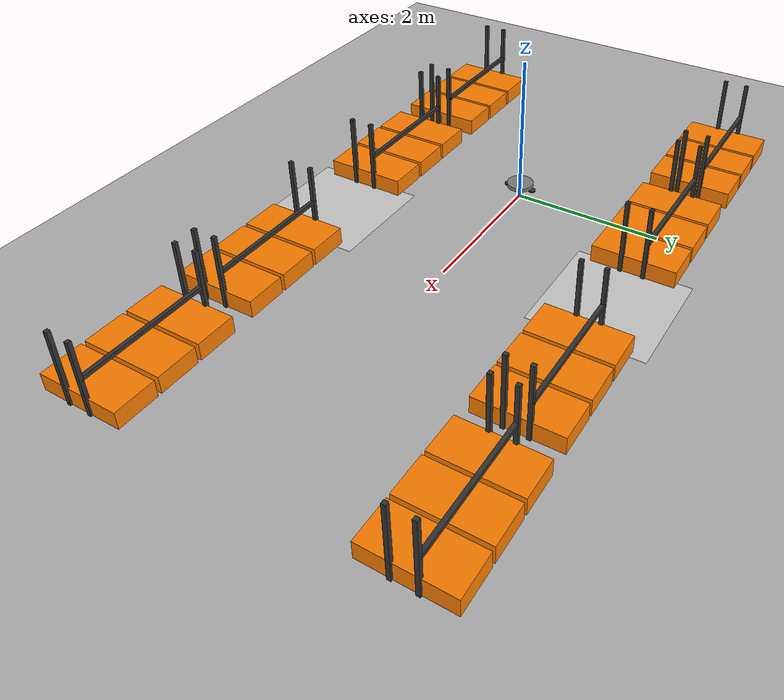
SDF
<?xml version="1.0"?>
<sdf version="1.6">
  <world name="warehouse">

    <!-- STEP 1: Ground Plane -->
    <model name="ground_plane">
      <static>true</static>
      <link name="ground_link">
        <collision name="collision">
          <geometry>
            <plane>
              <normal>0 0 1</normal>
              <size>100 100</size>
            </plane>
          </geometry>
        </collision>
        <visual name="visual">
          <geometry>
            <plane>
              <normal>0 0 1</normal>
              <size>100 100</size>
            </plane>
          </geometry>
          <material>
            <ambient>0.7 0.7 0.7 1</ambient>
            <diffuse>0.7 0.7 0.7 1</diffuse>
          </material>
        </visual>
      </link>
    </model>

    <!-- STEP 2: Sun Light -->
    <light name="sun" type="directional">
      <cast_shadows>true</cast_shadows>
      <pose>0 0 10 0 0 0</pose>
      <diffuse>1 1 1 1</diffuse>
      <specular>0.1 0.1 0.1 1</specular>
      <direction>-0.5 0.5 -1</direction>
      <attenuation>
        <range>1000</range>
        <constant>0.9</constant>
        <linear>0.01</linear>
        <quadratic>0.001</quadratic>
      </attenuation>
    </light>

    <!-- STEP 3: Cupboard rows with unique names -->
    <!-- Row 1 at y = +2.0 -->
    <include>
      <name>cupboard_1</name>
      <uri>model://cupboard/</uri>
      <pose>-2.0  2.0 0.0  0 0 0</pose>
    </include>
    <include>
      <name>cupboard_2</name>
      <uri>model://cupboard/</uri>
      <pose> 0.0  2.0 0.0  0 0 0</pose>
    </include>
    <include>
      <name>cupboard_3</name>
      <uri>model://cupboard/</uri>
      <pose> 3.0  2.0 0.0  0 0 0</pose>
    </include>
    <include>
      <name>cupboard_4</name>
      <uri>model://cupboard</uri>
      <pose> 5.0 2.0 0.0  0 0 0</pose>
    </include>

    <!-- Row 2 at y = -2.0 -->
    <include>
      <name>cupboard_5</name>
      <uri>model://cupboard/</uri>
      <pose>-2.0 -2.0 0.0  0 0 0</pose>
    </include>
    <include>
      <name>cupboard_6</name>
      <uri>model://cupboard/</uri>
      <pose> 0.0 -2.0 0.0  0 0 0</pose>
    </include>
    <include>
      <name>cupboard_7</name>
      <uri>model://cupboard/</uri>
      <pose> 3.0 -2.0 0.0  0 0 0</pose>
    </include>
    <include>
      <name>cupboard_8</name>
      <uri>model://cupboard/</uri>
      <pose> 5.0 -2.0 0.0  0 0 0</pose>
    </include>

    <!-- STEP 4: Central intersection tile -->
    <include>
      <uri>model://intersection</uri>
      <name>intersection_center_1</name>
      <pose>1.5 2.0 0.001  0 0 0</pose>
    </include>
    <include>
      <uri>model://intersection</uri>
      <name>intersection_center_2</name>
      <pose>1.5 -2.0 0.001  0 0 0</pose>
    </include>

    <!-- STEP 5: Add robot -->
    <include>
      <uri>model://robot</uri>
      <name>vacuum_robot</name>
      <pose>0 0 0.1 0 0 0</pose>
    </include>

  </world>
</sdf>

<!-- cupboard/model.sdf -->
<sdf version="1.6">
  <model name="cupboard">
    <static>true</static>

    <link name="cupboard_link">

      <!-- Inertial (minimal since static) -->
      <inertial>
        <mass>1.0</mass>
        <inertia>
          <ixx>0.1</ixx>
          <iyy>0.1</iyy>
          <izz>0.1</izz>
        </inertia>
      </inertial>

      <!-- FRAME: four vertical posts -->
      <!-- New width: 3×0.535 + 2×0.05 gap = 1.705 m total → half-width = 0.8525 -->
      <!-- Corner posts at x = ±0.8525, y = ±0.15, height = 1.0 (z=0.5) -->

      <!-- Front-left post -->
      <visual name="post_fl_vis">
        <pose>-0.8525  0.15 0.5  0 0 0</pose>
        <geometry><box><size>0.05 0.05 1.0</size></box></geometry>
        <material><ambient>0.2 0.2 0.2 1</ambient><diffuse>0.2 0.2 0.2 1</diffuse></material>
      </visual>
      <collision name="post_fl_col">
        <pose>-0.8525  0.15 0.5  0 0 0</pose>
        <geometry><box><size>0.05 0.05 1.0</size></box></geometry>
      </collision>

      <!-- Front-right post -->
      <visual name="post_fr_vis">
        <pose> 0.8525  0.15 0.5  0 0 0</pose>
        <geometry><box><size>0.05 0.05 1.0</size></box></geometry>
        <material><ambient>0.2 0.2 0.2 1</ambient><diffuse>0.2 0.2 0.2 1</diffuse></material>
      </visual>
      <collision name="post_fr_col">
        <pose> 0.8525  0.15 0.5  0 0 0</pose>
        <geometry><box><size>0.05 0.05 1.0</size></box></geometry>
      </collision>

      <!-- Back-left post -->
      <visual name="post_bl_vis">
        <pose>-0.8525 -0.15 0.5  0 0 0</pose>
        <geometry><box><size>0.05 0.05 1.0</size></box></geometry>
        <material><ambient>0.2 0.2 0.2 1</ambient><diffuse>0.2 0.2 0.2 1</diffuse></material>
      </visual>
      <collision name="post_bl_col">
        <pose>-0.8525 -0.15 0.5  0 0 0</pose>
        <geometry><box><size>0.05 0.05 1.0</size></box></geometry>
      </collision>

      <!-- Back-right post -->
      <visual name="post_br_vis">
        <pose> 0.8525 -0.15 0.5  0 0 0</pose>
        <geometry><box><size>0.05 0.05 1.0</size></box></geometry>
        <material><ambient>0.2 0.2 0.2 1</ambient><diffuse>0.2 0.2 0.2 1</diffuse></material>
      </visual>
      <collision name="post_br_col">
        <pose> 0.8525 -0.15 0.5  0 0 0</pose>
        <geometry><box><size>0.05 0.05 1.0</size></box></geometry>
      </collision>

      <!-- Front horizontal rail at mid-height -->
      <visual name="rail_front_vis">
        <pose>0 0.15 0.5 0 0 0</pose>
        <geometry><box><size>1.705 0.05 0.05</size></box></geometry>
        <material><ambient>0.2 0.2 0.2 1</ambient><diffuse>0.2 0.2 0.2 1</diffuse></material>
      </visual>
      <collision name="rail_front_col">
        <pose>0 0.15 0.5 0 0 0</pose>
        <geometry><box><size>1.705 0.05 0.05</size></box></geometry>
      </collision>

      <!-- Three orange boxes, size 0.535×1.100×0.230 (W×D×H), gap 0.05m -->
      <!-- X positions: −(0.535+0.05)=−0.585, 0, +0.585; Z=0.115 (half height) -->

      <!-- Left box -->
      <visual name="box_left_vis">
        <pose>-0.585  0.00 0.115  0 0 0</pose>
        <geometry><box><size>0.535 1.100 0.230</size></box></geometry>
        <material><ambient>1 0.5 0 1</ambient><diffuse>1 0.5 0 1</diffuse></material>
      </visual>
      <collision name="box_left_col">
        <pose>-0.585  0.00 0.115  0 0 0</pose>
        <geometry><box><size>0.535 1.100 0.230</size></box></geometry>
      </collision>

      <!-- Center box -->
      <visual name="box_center_vis">
        <pose> 0.000  0.00 0.115  0 0 0</pose>
        <geometry><box><size>0.535 1.100 0.230</size></box></geometry>
        <material><ambient>1 0.5 0 1</ambient><diffuse>1 0.5 0 1</diffuse></material>
      </visual>
      <collision name="box_center_col">
        <pose> 0.000  0.00 0.115  0 0 0</pose>
        <geometry><box><size>0.535 1.100 0.230</size></box></geometry>
      </collision>

      <!-- Right box -->
      <visual name="box_right_vis">
        <pose> 0.585  0.00 0.115  0 0 0</pose>
        <geometry><box><size>0.535 1.100 0.230</size></box></geometry>
        <material><ambient>1 0.5 0 1</ambient><diffuse>1 0.5 0 1</diffuse></material>
      </visual>
      <collision name="box_right_col">
        <pose> 0.585  0.00 0.115  0 0 0</pose>
        <geometry><box><size>0.535 1.100 0.230</size></box></geometry>
      </collision>

    </link>
  </model>
</sdf>

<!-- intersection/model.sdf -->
<sdf version="1.6">
  <model name="intersection">
    <static>true</static>
    <link name="intersection_link">
      <pose>0 0 0.001 0 0 0</pose>
      <collision name="collision">
        <geometry>
          <box>
            <size>1.5 1.5 0.002</size>
          </box>
        </geometry>
      </collision>
      <visual name="visual">
        <geometry>
          <box>
            <size>1.5 1.5 0.002</size>
          </box>
        </geometry>
        <material>
          <ambient>1 1 1 0.4</ambient>
          <diffuse>1 1 1 0.4</diffuse>
        </material>
      </visual>
    </link>
  </model>
</sdf>

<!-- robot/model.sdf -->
<sdf version="1.6">
  <model name="warehouse_bot">
    <static>false</static>

    <!--   Base Link & Body    -->
    <link name="base_link">
      <pose>0 0 0.1 0 0 0</pose>

      <!-- Body collision & visual -->
      <collision name="body_col">
        <geometry>
          <cylinder>
            <radius>0.18</radius>
            <length>0.05</length>
          </cylinder>
        </geometry>
      </collision>
      <visual name="body_vis">
        <geometry>
          <cylinder>
            <radius>0.18</radius>
            <length>0.05</length>
          </cylinder>
        </geometry>
        <material>
          <ambient>0.5 0.5 0.5 1</ambient>
          <diffuse>0.5 0.5 0.5 1</diffuse>
        </material>
      </visual>

      <!-- Inertial -->
      <inertial>
        <mass>5.0</mass>
        <inertia>
          <ixx>0.05</ixx>
          <iyy>0.05</iyy>
          <izz>0.05</izz>
        </inertia>
      </inertial>

      <!-- IMU Sensor -->
      <sensor name="imu_sensor" type="imu">
        <pose>0 0 0 0 0 0</pose>
        <imu>
          <topic>/warehouse_bot/imu/data_raw</topic>
          <gaussianNoise>0.0001</gaussianNoise>
        </imu>
        <plugin name="imu_plugin" filename="libros_gz_imu.so">
          <ros>
            <namespace>warehouse_bot</namespace>
          </ros>
          <topicName>imu/data_raw</topicName>
          <frameId>base_link</frameId>
        </plugin>
      </sensor>

      <!-- Ultrasonic / IR Rangefinders -->
      <sensor name="range_front" type="ray">
        <pose>0.25 0 0.1 0 0 0</pose>
        <ray>
          <scan>
            <horizontal>
              <samples>1</samples>
              <resolution>1</resolution>
              <min_angle>0</min_angle>
              <max_angle>0</max_angle>
            </horizontal>
          </scan>
          <range>
            <min>0.02</min>
            <max>3.0</max>
            <resolution>0.01</resolution>
          </range>
        </ray>
        <plugin name="range_plugin_f" filename="libros_gz_range.so">
          <ros>
            <namespace>warehouse_bot</namespace>
          </ros>
          <topicName>range/front</topicName>
          <frameId>base_link</frameId>
        </plugin>
      </sensor>

      <sensor name="range_left" type="ray">
        <pose>0 0.18 0.1 0 0 1.5708</pose>
        <ray>
          <scan>
            <horizontal>
              <samples>1</samples>
              <resolution>1</resolution>
              <min_angle>0</min_angle>
              <max_angle>0</max_angle>
            </horizontal>
          </scan>
          <range>
            <min>0.02</min>
            <max>3.0</max>
            <resolution>0.01</resolution>
          </range>
        </ray>
        <plugin name="range_plugin_l" filename="libros_gz_range.so">
          <ros>
            <namespace>warehouse_bot</namespace>
          </ros>
          <topicName>range/left</topicName>
          <frameId>base_link</frameId>
        </plugin>
      </sensor>

      <sensor name="range_right" type="ray">
        <pose>0 -0.18 0.1 0 0 -1.5708</pose>
        <ray>
          <scan>
            <horizontal>
              <samples>1</samples>
              <resolution>1</resolution>
              <min_angle>0</min_angle>
              <max_angle>0</max_angle>
            </horizontal>
          </scan>
          <range>
            <min>0.02</min>
            <max>3.0</max>
            <resolution>0.01</resolution>
          </range>
        </ray>
        <plugin name="range_plugin_r" filename="libros_gz_range.so">
          <ros>
            <namespace>warehouse_bot</namespace>
          </ros>
          <topicName>range/right</topicName>
          <frameId>base_link</frameId>
        </plugin>
      </sensor>

    </link>

    <!--    Wheel Assemblies    -->
    <link name="wheel_left">
      <pose>0 0.18 0.05 0 0 0</pose>
      <collision name="col">
        <geometry>
          <cylinder><radius>0.05</radius><length>0.02</length></cylinder>
        </geometry>
      </collision>
      <visual name="vis">
        <geometry>
          <cylinder><radius>0.05</radius><length>0.02</length></cylinder>
        </geometry>
        <material>
          <ambient>0.2 0.2 0.2 1</ambient>
          <diffuse>0.2 0.2 0.2 1</diffuse>
        </material>
      </visual>
      <inertial>
        <mass>0.3</mass>
        <inertia>
          <ixx>0.0005</ixx>
          <iyy>0.0005</iyy>
          <izz>0.0005</izz>
        </inertia>
      </inertial>
    </link>

    <link name="wheel_right">
      <pose>0 -0.18 0.05 0 0 0</pose>
      <collision name="col">
        <geometry>
          <cylinder><radius>0.05</radius><length>0.02</length></cylinder>
        </geometry>
      </collision>
      <visual name="vis">
        <geometry>
          <cylinder><radius>0.05</radius><length>0.02</length></cylinder>
        </geometry>
        <material>
          <ambient>0.2 0.2 0.2 1</ambient>
          <diffuse>0.2 0.2 0.2 1</diffuse>
        </material>
      </visual>
      <inertial>
        <mass>0.3</mass>
        <inertia>
          <ixx>0.0005</ixx>
          <iyy>0.0005</iyy>
          <izz>0.0005</izz>
        </inertia>
      </inertial>
    </link>

    <!--       Wheel Joints     -->
    <joint name="joint_left" type="revolute">
      <parent>base_link</parent>
      <child>wheel_left</child>
      <axis>
        <xyz>0 1 0</xyz>
        <limit>
          <lower>-1000</lower>
          <upper>1000</upper>
        </limit>
      </axis>
    </joint>

    <joint name="joint_right" type="revolute">
      <parent>base_link</parent>
      <child>wheel_right</child>
      <axis>
        <xyz>0 1 0</xyz>
        <limit>
          <lower>-1000</lower>
          <upper>1000</upper>
        </limit>
      </axis>
    </joint>

    <!--  Differential Drive    -->
    <plugin name="diff_drive" filename="libros_gz_diff_drive.so">
      <ros>
        <namespace>warehouse_bot</namespace>
      </ros>
      <leftJoint>joint_left</leftJoint>
      <rightJoint>joint_right</rightJoint>
      <wheelSeparation>0.36</wheelSeparation>
      <wheelDiameter>0.10</wheelDiameter>
      <cmdVelTopic>cmd_vel</cmdVelTopic>
      <frameId>base_link</frameId>
    </plugin>

    <!--    Monocular Camera    -->
    <link name="camera_link">
      <pose>0.20 0 0.30 0 0 0</pose>
      <sensor name="front_camera" type="camera">
        <camera>
          <horizontal_fov>1.047</horizontal_fov>
          <image>
            <width>640</width>
            <height>480</height>
            <format>R8G8B8</format>
          </image>
          <clip>
            <near>0.1</near>
            <far>50.0</far>
          </clip>
        </camera>
        <plugin name="camera_ctrl" filename="libros_gz_camera.so">
          <ros>
            <namespace>warehouse_bot</namespace>
          </ros>
          <imageTopic>image_raw</imageTopic>
          <cameraInfoTopic>camera_info</cameraInfoTopic>
          <frameId>camera_link</frameId>
        </plugin>
      </sensor>
    </link>

  </model>
</sdf>
